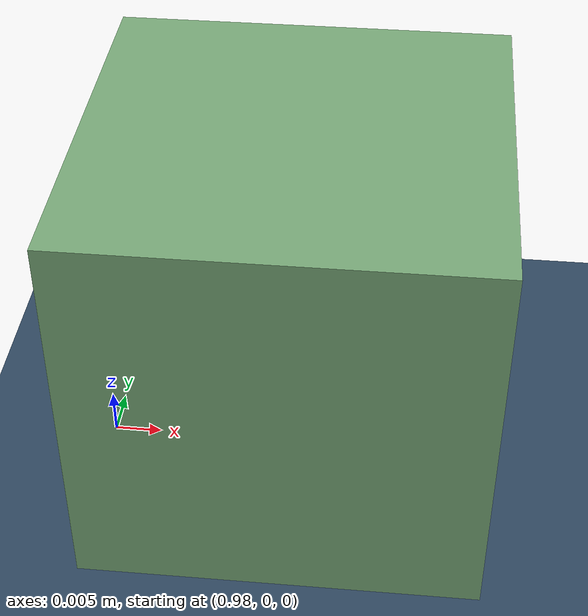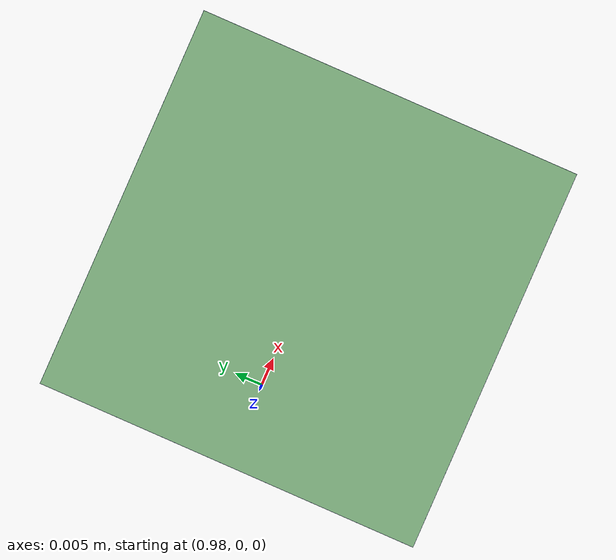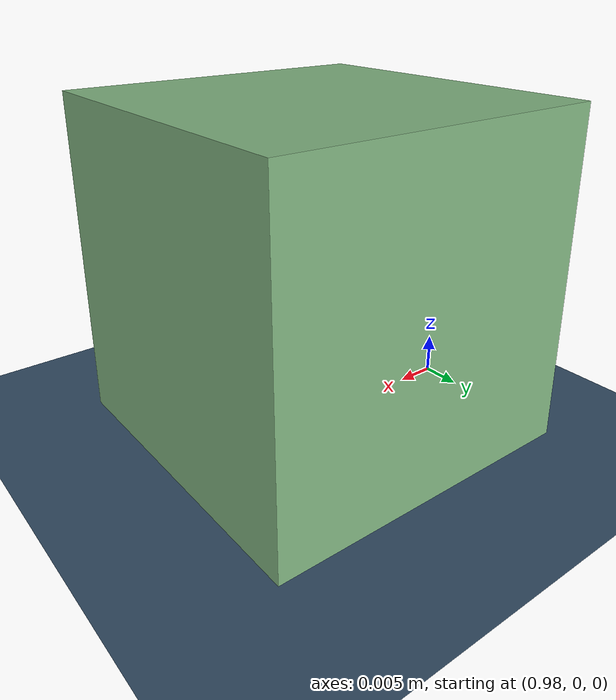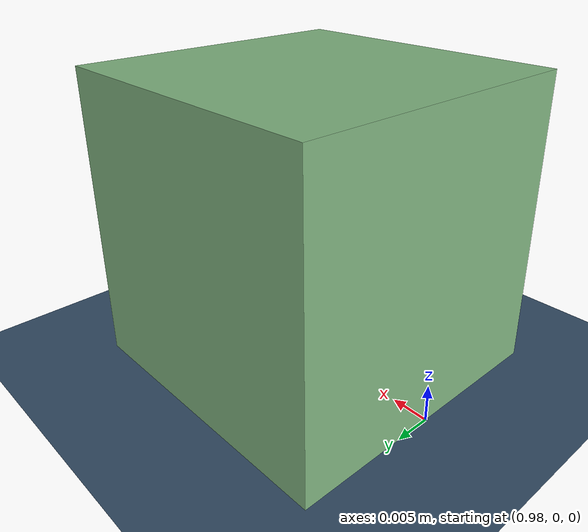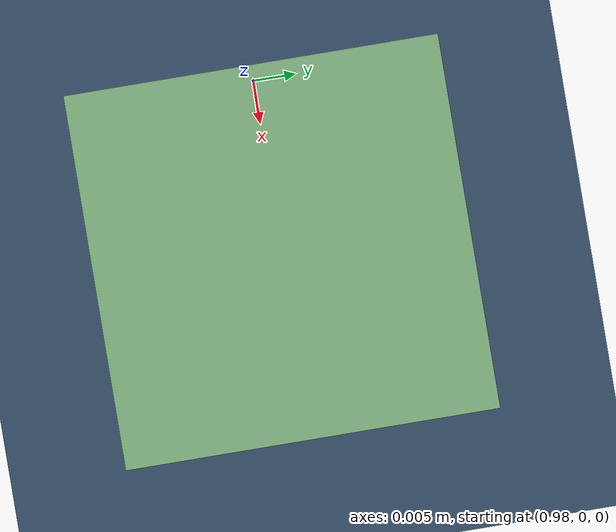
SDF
<sdf version='1.10'>
  <world name='empty'>
    <physics name='1ms' type='ignored'>
      <max_step_size>0.001</max_step_size>
      <real_time_factor>1</real_time_factor>
      <real_time_update_rate>1000</real_time_update_rate>
    </physics>
    <plugin name='gz::sim::systems::Physics' filename='gz-sim-physics-system'/>
    <plugin name='gz::sim::systems::UserCommands' filename='gz-sim-user-commands-system'/>
    <plugin name='gz::sim::systems::SceneBroadcaster' filename='gz-sim-scene-broadcaster-system'/>
    <plugin name='gz::sim::systems::Contact' filename='gz-sim-contact-system'/>
    <gravity>0 0 -9.8000000000000007</gravity>
    <magnetic_field>5.5644999999999998e-06 2.2875799999999999e-05 -4.2388400000000002e-05</magnetic_field>
    <atmosphere type='adiabatic'/>
    <scene>
      <ambient>0.400000006 0.400000006 0.400000006 1</ambient>
      <background>0.699999988 0.699999988 0.699999988 1</background>
      <shadows>true</shadows>
    </scene>
    <model name='ground_plane'>
      <static>true</static>
      <link name='link'>
        <collision name='collision'>
          <geometry>
            <plane>
              <normal>0 0 1</normal>
              <size>100 100</size>
            </plane>
          </geometry>
          <surface>
            <friction>
              <ode/>
            </friction>
            <bounce/>
            <contact/>
          </surface>
        </collision>
        <visual name='visual'>
          <geometry>
            <plane>
              <normal>0 0 1</normal>
              <size>100 100</size>
            </plane>
          </geometry>
          <material>
            <ambient>0.2 0.3 0.4</ambient>
            <diffuse>0.2 0.3 0.4</diffuse>
            <specular>0.2 0.3 0.4</specular>
          </material>
        </visual>
        <pose>0 0 0 0 0 0</pose>
        <inertial>
          <pose>0 0 0 0 0 0</pose>
          <mass>1</mass>
          <inertia>
            <ixx>1</ixx>
            <ixy>0</ixy>
            <ixz>0</ixz>
            <iyy>1</iyy>
            <iyz>0</iyz>
            <izz>1</izz>
          </inertia>
        </inertial>
        <enable_wind>false</enable_wind>
      </link>
      <pose>0 0 0 0 0 0</pose>
      <self_collide>false</self_collide>
    </model>
    <model name="cube">
      <!-- Lift 0.5 m so the bottom sits on z=0 -->
      <pose>1.0 0 0.02 0 0 0</pose>
      <static>false</static>

      <link name="link">
        <collision name="collision">
          <geometry>
            <box><size>0.04 0.04 0.04</size></box>
          </geometry>
        </collision>

        <visual name="visual">
          <geometry>
            <box><size>0.04 0.04 0.04</size></box>
          </geometry>
          <material>
            <ambient>0.5 0.7 0.5 1.0</ambient>
            <diffuse>0.5 0.7 0.5 1.0</diffuse>
          </material>
        </visual>

        <inertial>
          <mass>1.0</mass>
          <!-- simple cube inertia, I = 1/12 m (a²+b²) -->
          <inertia>
            <ixx>0.0002666</ixx> <iyy>0.0002666</iyy> <izz>0.0002666</izz>
            <ixy>0</ixy> <ixz>0</ixz> <iyz>0</iyz>
          </inertia>
        </inertial>
      </link>
    </model>
    <light name='sun' type='directional'>
      <pose>0 0 10 0 0 0</pose>
      <cast_shadows>true</cast_shadows>
      <intensity>1</intensity>
      <direction>-0.5 0.10000000000000001 -0.90000000000000002</direction>
      <diffuse>0.800000012 0.800000012 0.800000012 1</diffuse>
      <specular>0.200000003 0.200000003 0.200000003 1</specular>
      <attenuation>
        <range>1000</range>
        <linear>0.01</linear>
        <constant>0.90000000000000002</constant>
        <quadratic>0.001</quadratic>
      </attenuation>
      <spot>
        <inner_angle>0</inner_angle>
        <outer_angle>0</outer_angle>
        <falloff>0</falloff>
      </spot>
    </light>
  </world>
</sdf>
